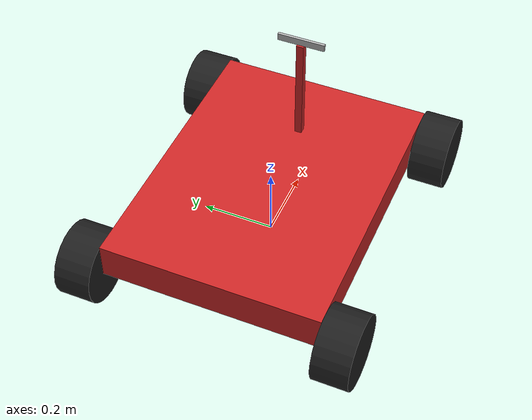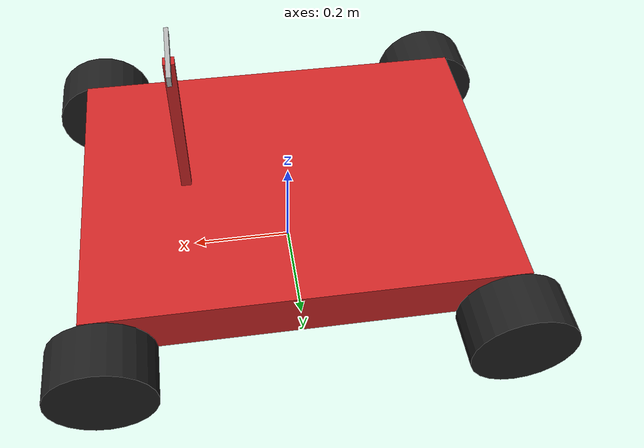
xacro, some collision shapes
<?xml version="1.0"?>
<robot xmlns:xacro="http://www.ros.org/wiki/xacro" name="atreus">

<!--.................................XACRO CONSTANTS...............................-->

<xacro:property name="chassis_height" value="0.1"/>
<xacro:property name="chassis_length" value="0.8"/>
<xacro:property name="chassis_width" value="0.6"/>
<xacro:property name="chassis_ground_clearance" value="${0.1+chassis_height/2}"/>
<xacro:property name="chassis_mass" value="5"/>

<xacro:property name="wheel_mass" value="0.1"/>
<xacro:property name="wheel_radius" value="0.1"/>
<xacro:property name="wheel_width" value="0.1"/>
<xacro:property name="wheel_pos" value="-0.175"/>
<xacro:property name="wheel_base" value="${wheel_width+chassis_width}"/>
<xacro:property name="wheel_torque" value="50"/>

<xacro:arg name="camera_enabled" default="true" />
<xacro:property name="camera_height" value="0.3"/>

<!-- ..................................LOAD MACROS.............................-->

<xacro:include filename="$(find atreus)/urdf/xacro_files/atreus.gazebo"/>
<xacro:include filename="$(find atreus)/urdf/xacro_files/materials.xacro"/>
<xacro:include filename="$(find atreus)/urdf/xacro_files/macros.xacro"/>

<!--BASE LINK-->

<link name="dummy"/>
<link name="base_link">

	<collision name='collision'>
		<origin xyz="0 0 ${chassis_ground_clearance}" rpy="0 0 0" />
  		<geometry>
    		<box size="${chassis_length} ${chassis_width} ${chassis_height}"/>
  		</geometry>
	</collision>

	<visual>
		<origin xyz="0 0 ${chassis_ground_clearance}" rpy="0 0 0" />
  		<geometry>
    		<box size="${chassis_length} ${chassis_width} ${chassis_height}"/>
  		</geometry>
  		<material name="red"/>
	</visual>

	<inertial>
  		<mass value="${chassis_mass}"/>
  		<xacro:box_inertia m="${chassis_mass}" x="${chassis_length}" y="${chassis_width}" z = "${chassis_height}"/>
	</inertial>
</link>

<joint name="dummy_joint" type="fixed">
	<parent link="dummy"/>
	<child link="base_link"/>
</joint>

<!--WHEELS-->

<xacro:wheel cardinality="front" dexterity="left"  fb="-1"  lr="1"  />
<xacro:wheel cardinality="front" dexterity="right" fb="-1"  lr="-1" />
<xacro:wheel cardinality="back"  dexterity="left"  fb="1" lr="1"  />
<xacro:wheel cardinality="back"  dexterity="right" fb="1" lr="-1" />

<xacro:if value="$(arg camera_enabled)">

	<!--CAMERA HOLDER-->

	<link name="camera_holder">

		<collision name='collision'>
			<origin xyz="0 0 0" rpy="0 0 0" />
	  		<geometry>
	    		<box size="0.02 0.02 ${camera_height}"/>
	  		</geometry>
		</collision>

		<visual>
			<origin xyz="0 0 0" rpy="0 0 0" />
	  		<geometry>
	    		<box size="0.02 0.02 ${camera_height}"/>
	  		</geometry>
	  		<material name="red"/>
		</visual>

		<inertial>
	  		<mass value="0.01"/>
	  		<xacro:box_inertia m="0.01" x="0.02" y="0.02" z = "${camera_height}"/>
		</inertial>

	</link>

	<joint name="camera_holder_joint" type="fixed">
	    <origin rpy="0 0 0" xyz="${chassis_length/4} 0 ${chassis_height/2+camera_height/2+chassis_ground_clearance}" />
	    <parent link="base_link"/>
	    <child link="camera_holder"/>
	</joint>

	<!-- INTEL REALSENSE -->

    <link name="rs200_camera">

        <visual>
            <origin rpy="0 0 0" xyz="0 0 0"/>
            <geometry>
                <mesh filename="package://atreus/models/realsense_camera/meshes/realsense.dae"/>
            </geometry>
        </visual>

        <collision>
            <geometry>
                <box size="0.0078 0.130 0.0192"/>
            </geometry>
        </collision>

        <inertial>
            <mass value="0.0615752"/>
            <origin rpy="0 0 0" xyz="0 0 0"/>
            <inertia ixx="9.108e-05"
                     ixy="0"
                     ixz="0"
                     iyy="2.51e-06"
                     iyz="0"
                     izz="8.931e-05"
            />
        </inertial>
	</link>

    <joint name="realsense_joint" type="fixed">
        <parent link="camera_holder"/>
        <child link="rs200_camera"/>
		<origin rpy="0 0 0" xyz="0 0 ${camera_height/2+0.0192/2}"/>
    </joint>

    <link name="color" />
    <link name="depth" />
    <link name="ired1" />
    <link name="ired2" />

    <joint name="color_joint" type="fixed">
        <parent link="rs200_camera" />
        <child link="color" />
        <origin xyz="0 -0.046 0.004" rpy="1.5707 3.1414 1.5707"/>
    </joint>

    <joint name="depth_joint" type="fixed">
        <parent link="rs200_camera" />
        <child link="depth" />
        <origin xyz="0 -0.03 0.004" rpy="0 0 0"/>
    </joint>

    <joint name="ired1_joint" type="fixed">
        <parent link="rs200_camera" />
        <child link="ired1" />
        <origin xyz="0 -0.06 0.004" rpy="0 0 0"/>
    </joint>

    <joint name="ired2_joint" type="fixed">
        <parent link="rs200_camera" />
        <child link="ired2" />
        <origin xyz="0 0.01 0.004" rpy="0 0 0"/>
    </joint>

</xacro:if>

</robot>

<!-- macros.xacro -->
<robot xmlns:xacro="http://www.ros.org/wiki/xacro" name="atreus">

<!-- INERTIA MATRICES-->

  <xacro:macro name="cylinder_inertia" params="m r h">
    <inertia ixx="${m * (3 * r * r + h * h) / 12}" ixy="0" ixz="0"
      iyy="${m * (3 * r * r + h * h) / 12}" iyz="0"
      izz="${m * r * r / 2}"
    />
  </xacro:macro>

  <xacro:macro name="box_inertia" params="m x y z">
    <inertia ixx="${m * (y * y + z * z) / 12}" ixy="0" ixz="0"
      iyy="${m * (x * x + z * z) / 12}" iyz="0"
      izz="${m * (x * x + z * z) / 12}"
    />
  </xacro:macro>

  <xacro:macro name="sphere_inertia" params="m r">
    <inertia ixx="${2 * m * r * r / 5}" ixy="0" ixz="0"
      iyy="${2 * m * r * r / 5}" iyz="0"
      izz="${2 * m * r * r / 5}"
    />
  </xacro:macro>

<!-- WHEEL DEFINITION -->

 <xacro:macro name="wheel" params="cardinality dexterity fb lr">

   <link name="${cardinality}_${dexterity}_wheel">
    <collision>
      <origin xyz="0 0 0" rpy="0 ${pi/2} ${pi/2}" />
      <geometry>
       <cylinder length="${wheel_width}" radius="${wheel_radius}"/>
      </geometry>
    </collision>

    <visual>
      <origin xyz="0 0 0" rpy="0 ${pi/2} ${pi/2}" />
      <geometry>
       <cylinder length="${wheel_width}" radius="${wheel_radius}"/>
      </geometry>
      <material name="black"/>
    </visual>

    <inertial>
      <origin xyz="0 0 0" rpy="0 ${pi/2} ${pi/2}" />
      <mass value="${wheel_mass}"/>
      <xacro:cylinder_inertia m="${wheel_mass}" r="${wheel_radius}" h="${wheel_width}"/>
    </inertial>
   </link>

   <joint name="${cardinality}_${dexterity}_wheel_joint" type="continuous">
      <parent link="base_link"/>
      <child link="${cardinality}_${dexterity}_wheel"/>
      <origin xyz="${fb*(wheel_pos-chassis_length/4)} ${lr*(wheel_width/2+chassis_width/2)} ${wheel_radius}" rpy="0 0 0" />
      <axis xyz="0 1 0" rpy="0 0 0" />
    </joint>

  </xacro:macro>

</robot>
